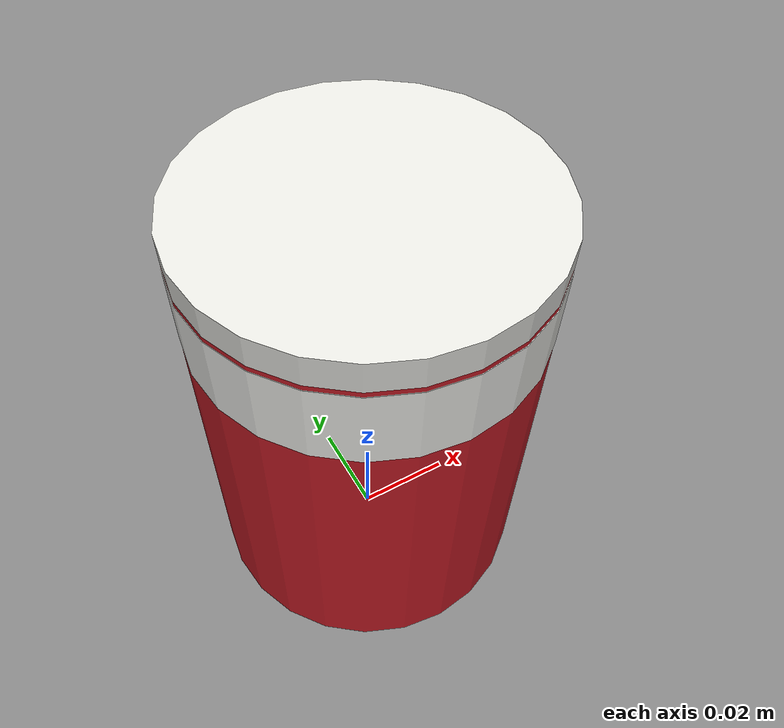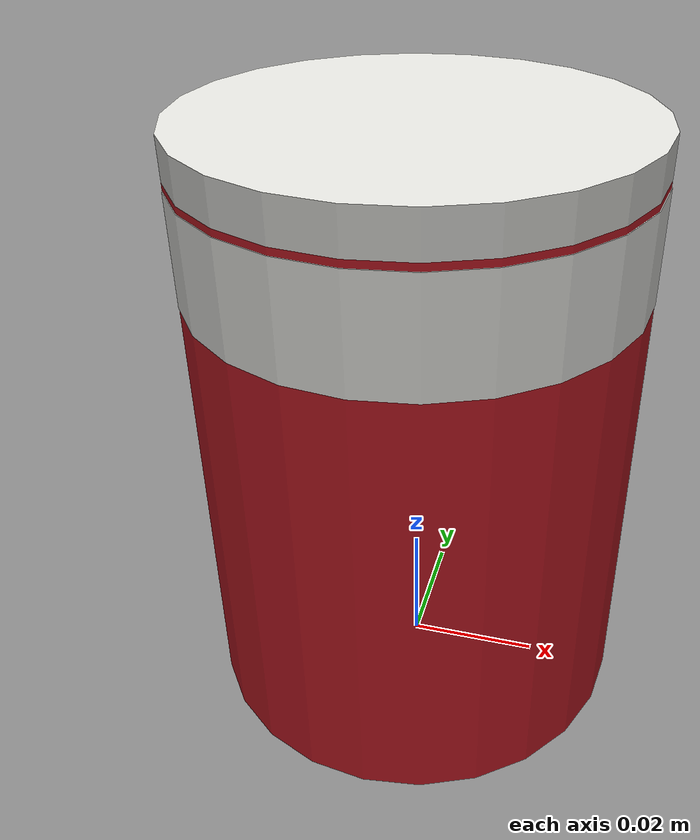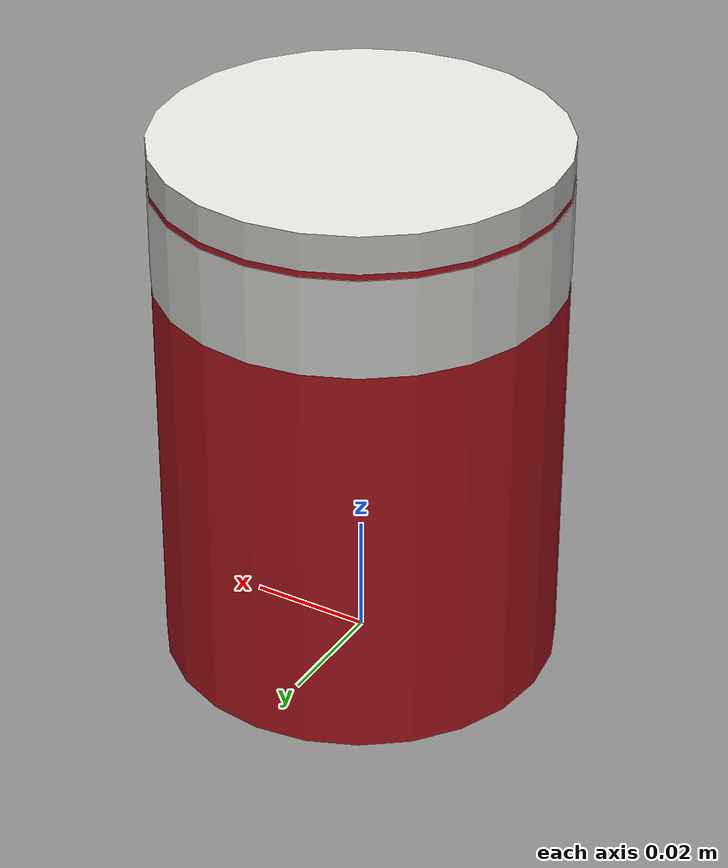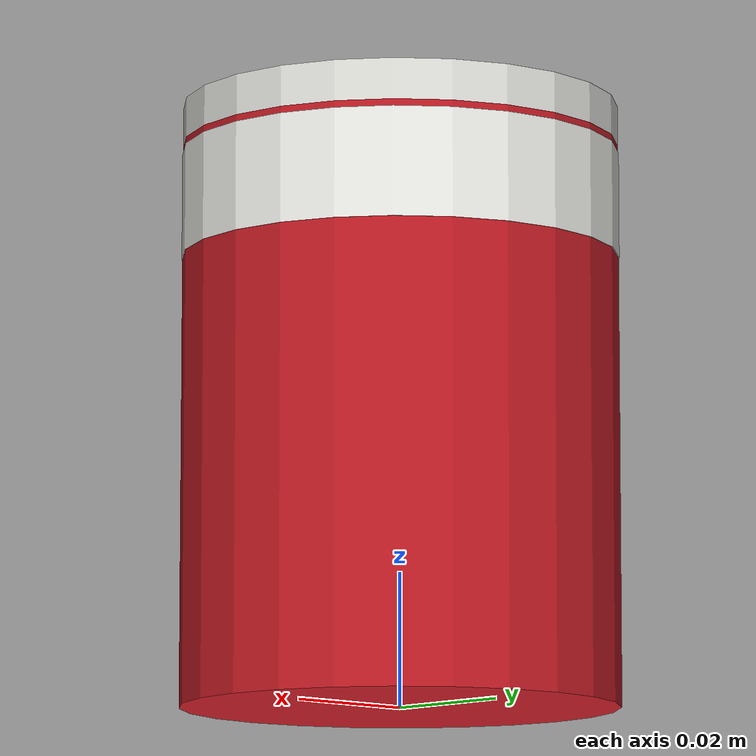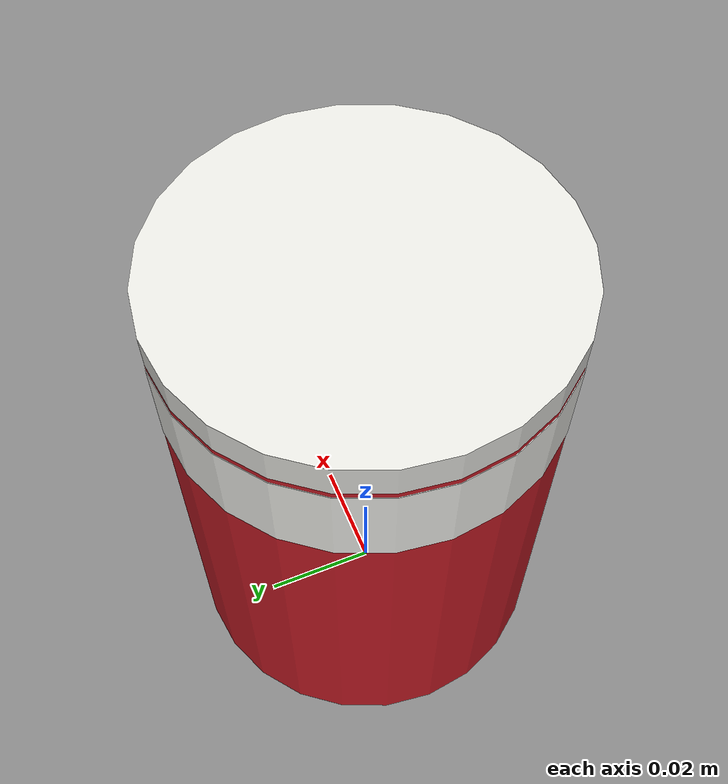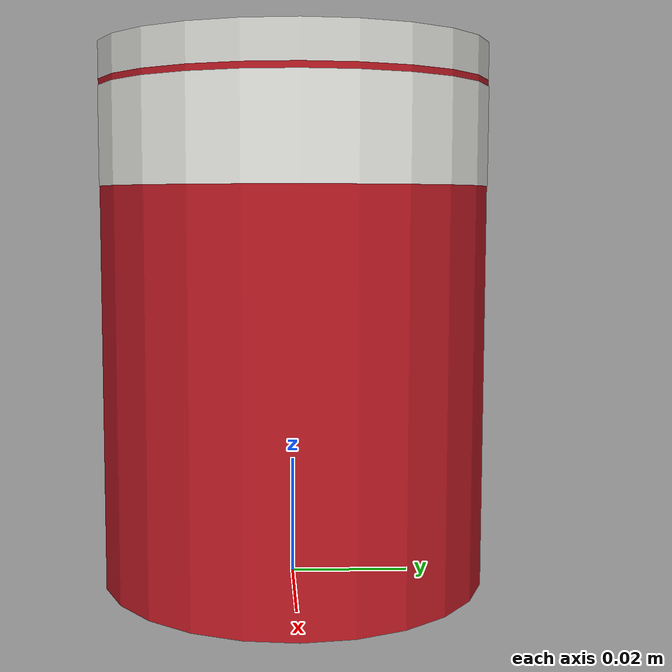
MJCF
<mujoco model="pringles">

  <default>
    <default class="pringles">
      <geom condim="4" friction="1.2 0.05 0.001" solref="0.01 1"/>
    </default>
    <default class="pringles_print">
      <geom contype="0" conaffinity="0" group="1" mass="0"/>
    </default>
  </default>

  <worldbody>
    <body name="root">
      <freejoint name="free"/>
      <geom name="tube" class="pringles" type="cylinder"
            pos="+0.00000 +0.00000 +0.04200" size="+0.03250 +0.04200"
            mass="0.055" rgba="0.78 0.11 0.15 1"/>
      <geom name="lid" class="pringles" type="cylinder"
            pos="+0.00000 +0.00000 +0.08700"
            size="+0.03250 +0.00300"
            mass="0.010" rgba="0.90 0.90 0.88 1"/>

      <!-- White band under the lid (visual only). -->
      <geom class="pringles_print" type="cylinder"
            pos="+0.00000 +0.00000 +0.07500" size="+0.03260 +0.00800"
            rgba="0.95 0.95 0.93 1"/>
    </body>
  </worldbody>
</mujoco>
